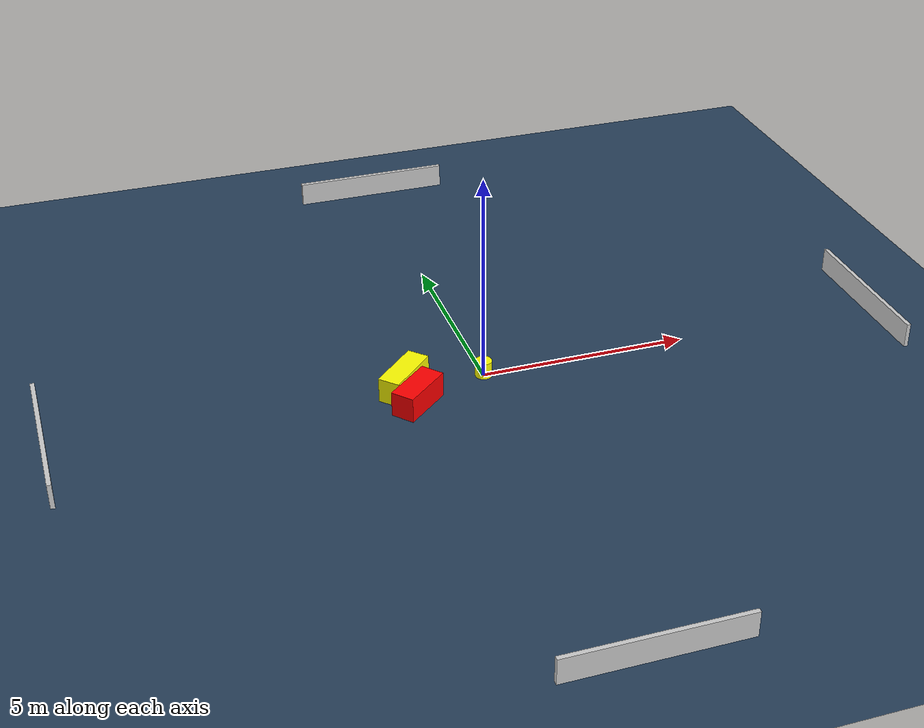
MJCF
<?xml version="1.0" ?>
<mujoco model="generated_environment">
  <option timestep="0.01" integrator="RK4" cone="elliptic"/>
  <default>
    <geom density="1"/>
  </default>
  <asset>
    <texture builtin="gradient" height="3072" name="skybox" rgb1="0.3 0.5 0.7" rgb2="0 0 0" type="skybox" width="512"/>
    <texture builtin="checker" height="300" name="groundplane" rgb1="0.2 0.3 0.4" rgb2="0.1 0.2 0.3" type="2d" width="300"/>
    <material name="groundplane" reflectance="0.2" texrepeat="5 5" texture="groundplane"/>
  </asset>
  <worldbody>
    <light dir="0 0 -1" directional="true" pos="0 0 1.5"/>
    <geom condim="3" friction="0.5 0.005 0.001" material="groundplane" name="floor" pos="0 0 0" size="0 0 0.05" type="plane"/>
    <body name="walls">
      <geom name="wall_1" condim="4" pos="-10.0 0.0 0.3" rgba="0.800000011920929 0.800000011920929 0.800000011920929 1.0" size="0.05 2.0 0.3" type="box"/>
      <geom name="wall_2" condim="4" pos="10.0 0.0 0.3" rgba="0.800000011920929 0.800000011920929 0.800000011920929 1.0" size="0.05 2.0 0.3" type="box"/>
      <geom name="wall_3" condim="4" pos="0.0 -10.0 0.3" rgba="0.800000011920929 0.800000011920929 0.800000011920929 1.0" size="2.0 0.05 0.3" type="box"/>
      <geom name="wall_4" condim="4" pos="0.0 10.0 0.3" rgba="0.800000011920929 0.800000011920929 0.800000011920929 1.0" size="2.0 0.05 0.3" type="box"/>
    </body>
    <body name="robot">
      <joint name="joint_x" type="slide" pos="0 0 0" axis="1 0 0"/>
      <joint name="joint_y" type="slide" pos="0 0 0" axis="0 1 0"/>
      <geom name="robot" type="cylinder" pos="0.0 0.0 0.2" size="0.2 0.2 0.0" mass="5.0" friction="1.0 0.005 0.0001" condim="4" rgba="1.0 1.0 0.0 1.0"/>
    </body>
    <body name="obstacle_1_movable">
      <geom name="obstacle_1_movable" condim="4" pos="-1.9189789326470248 -0.003958319233359004 0.3" euler="0 0 314.20705949982164" friction="0.0 0.005 0.001" rgba="1.0 1.0 0.0 1.0" size="0.2649862433329092 0.6865632811036736 0.3" type="box" mass="0.1"/>
      <joint type="free"/>
    </body>
    <body name="obstacle_2_static">
      <geom name="obstacle_2_static" condim="4" pos="-1.8019558329207093 -0.7173365035651508 0.3" euler="0 0 311.16362537391154" friction="0.0 0.005 0.001" rgba="1.0 0.0 0.0 1.0" size="0.2828832116984389 0.641667374202535 0.3" type="box"/>
    </body>
  </worldbody>
  <actuator>
    <motor name="actuator_x" joint="joint_x" gear="1" ctrlrange="-1 1"/>
    <motor name="actuator_y" joint="joint_y" gear="1" ctrlrange="-1 1"/>
  </actuator>
</mujoco>
